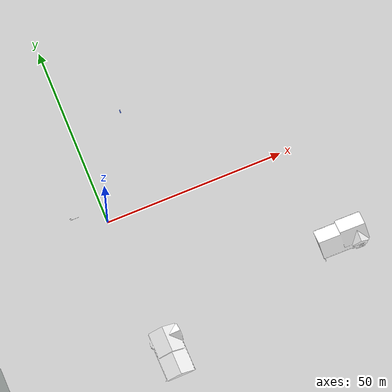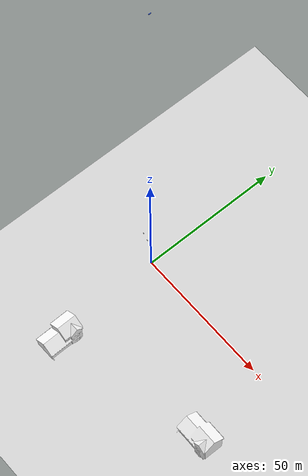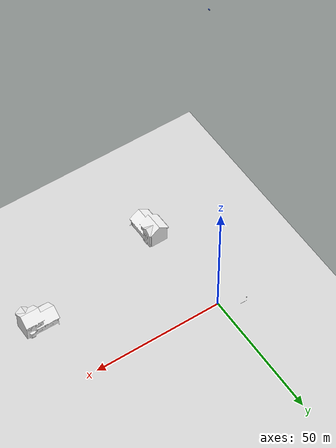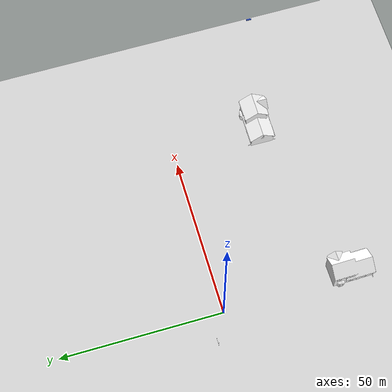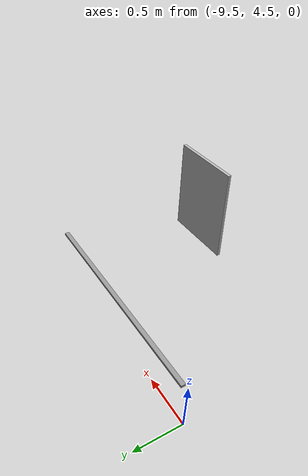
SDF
<sdf version="1.7">
 <world name="default">
  <light name="sun" type="directional">
   <pose>0 0 10 0 -0 0</pose>
   <diffuse>0.8 0.8 0.8 1</diffuse>
   <specular>0.2 0.2 0.2 1</specular>
   <attenuation>
    <range>1000</range>
    <constant>0.9</constant>
    <linear>0.01</linear>
    <quadratic>0.001</quadratic>
   </attenuation>
   <direction>-0.5 0.1 -0.9</direction>
   <spot><inner_angle>0</inner_angle><outer_angle>0</outer_angle><falloff>0</falloff></spot>
  </light>
  <model name="ground_plane">
   <static>1</static>
   <link name="link">
    <collision name="collision">
     <geometry><plane><normal>0 0 1</normal><size>100 100</size></plane></geometry>
     <surface>
      <contact><collide_bitmask>65535</collide_bitmask></contact>
      <friction><ode><mu>100</mu><mu2>50</mu2></ode></friction>
     </surface>
    </collision>
    <visual name="visual">
     <cast_shadows>0</cast_shadows>
     <geometry><plane><normal>0 0 1</normal><size>100 100</size></plane></geometry>
     <material>
      <script><uri>file://media/materials/scripts/gazebo.material</uri><name>Gazebo/Grey</name></script>
     </material>
    </visual>
   </link>
  </model>
  <gravity>0 0 -9.8</gravity>
  <magnetic_field>6e-06 2.3e-05 -4.2e-05</magnetic_field>
  <atmosphere type="adiabatic"/>
  <physics type="ode">
   <max_step_size>0.001</max_step_size>
   <real_time_factor>1</real_time_factor>
   <real_time_update_rate>1000</real_time_update_rate>
  </physics>
  <scene><ambient>0.4 0.4 0.4 1</ambient><background>0.7 0.7 0.7 1</background><shadows>1</shadows></scene>
  <spherical_coordinates>
   <surface_model>EARTH_WGS84</surface_model>
   <latitude_deg>0</latitude_deg>
   <longitude_deg>0</longitude_deg>
   <elevation>0</elevation>
   <heading_deg>0</heading_deg>
  </spherical_coordinates>
  <model name="satellite">
   <link name="link_0">
    <inertial>
     <mass>1</mass>
     <inertia>
      <ixx>0.166667</ixx>
      <ixy>0</ixy>
      <ixz>0</ixz>
      <iyy>0.166667</iyy>
      <iyz>0</iyz>
      <izz>0.166667</izz>
     </inertia>
    </inertial>
    <pose>0 2e-06 4.4e-05 0 -0 0</pose>
    <visual name="visual">
     <geometry><box><size>0.8 0.2 0.2</size></box></geometry>
     <material>
      <lighting>1</lighting>
      <script><uri>file://media/materials/scripts/gazebo.material</uri><name>Gazebo/Blue</name></script>
      <shader type="pixel"><normal_map>__default__</normal_map></shader>
      <ambient>0.3 0.3 0.3 1</ambient>
      <diffuse>0.7 0.7 0.7 1</diffuse>
      <specular>0.01 0.01 0.01 1</specular>
      <emissive>0 0 0 1</emissive>
     </material>
     <cast_shadows>0</cast_shadows>
    </visual>
    <collision name="collision">
     <geometry><box><size>0.8 0.2 0.2</size></box></geometry>
     <surface>
      <friction>
       <ode><mu>1</mu><mu2>1</mu2><fdir1>0 0 0</fdir1><slip1>0</slip1><slip2>0</slip2></ode>
       <torsional>
        <coefficient>1</coefficient>
        <patch_radius>0</patch_radius>
        <surface_radius>0</surface_radius>
        <use_patch_radius>1</use_patch_radius>
        <ode><slip>0</slip></ode>
       </torsional>
      </friction>
      <bounce><restitution_coefficient>0</restitution_coefficient><threshold>1e+06</threshold></bounce>
      <contact>
       <collide_without_contact>0</collide_without_contact>
       <collide_without_contact_bitmask>1</collide_without_contact_bitmask>
       <collide_bitmask>1</collide_bitmask>
       <ode>
        <soft_cfm>0</soft_cfm>
        <soft_erp>0.2</soft_erp>
        <kp>1e+13</kp>
        <kd>1</kd>
        <max_vel>0.01</max_vel>
        <min_depth>0</min_depth>
       </ode>
       <bullet>
        <split_impulse>1</split_impulse>
        <split_impulse_penetration_threshold>-0.01</split_impulse_penetration_threshold>
        <soft_cfm>0</soft_cfm>
        <soft_erp>0.2</soft_erp>
        <kp>1e+13</kp>
        <kd>1</kd>
       </bullet>
      </contact>
     </surface>
    </collision>
    <sensor name="upper_camera" type="camera">
     <pose>0 0 0 0 1.57 0</pose>
     <update_rate>30</update_rate>
     <visualize>1</visualize>
     <camera name="head">
      <horizontal_fov>1.0856</horizontal_fov>
      <image><width>1280</width><height>720</height><format>R8G8B8</format></image>
      <clip><near>0.03</near><far>200</far></clip>
      <noise><type>gaussian</type><mean>0</mean><stddev>0.007</stddev></noise>
     </camera>
     <plugin name="camera_controller" filename="libgazebo_ros_camera.so">
      <alwaysOn>1</alwaysOn>
      <updateRate>0.0</updateRate>
      <cameraName>rrbot/camera1</cameraName>
      <imageTopicName>image_raw</imageTopicName>
      <cameraInfoTopicName>camera_info</cameraInfoTopicName>
      <frameName>camera_link</frameName>
      <hackBaseline>0.07</hackBaseline>
      <distortionK1>0.0</distortionK1>
      <distortionK2>0.0</distortionK2>
      <distortionK3>0.0</distortionK3>
      <distortionT1>0.0</distortionT1>
      <distortionT2>0.0</distortionT2>
     </plugin>
    </sensor>
   </link>
   <static>1</static>
   <pose>4.72727 -3.06392 147.408 0 -0 1.56032</pose>
  </model>
  <model name="House 3">
   <static>1</static>
   <link name="link">
    <collision name="collision">
     <geometry><mesh><uri>model://house_3/meshes/house_3.dae</uri><scale>1.5 1.5 1.5</scale></mesh></geometry>
    </collision>
    <visual name="visual">
     <geometry><mesh><uri>model://house_3/meshes/house_3.dae</uri><scale>1.5 1.5 1.5</scale></mesh></geometry>
     <material>
      <script>
       <uri>model://house_3/materials/scripts</uri>
       <uri>model://house_3/materials/textures</uri>
       <uri>model://house_1/materials/textures</uri>
       <name>House_3/Diffuse</name>
      </script>
      <shader type="normal_map_tangent_space">
       <normal_map>model://house_1/materials/textures/House_1_Normal.png</normal_map>
      </shader>
     </material>
    </visual>
   </link>
   <pose>2.33042 -43.3661 0 0 0 -1.55547</pose>
  </model>
  <model name="House 3_0">
   <static>1</static>
   <link name="link">
    <collision name="collision">
     <geometry><mesh><uri>model://house_3/meshes/house_3.dae</uri><scale>1.5 1.5 1.5</scale></mesh></geometry>
    </collision>
    <visual name="visual">
     <geometry><mesh><uri>model://house_3/meshes/house_3.dae</uri><scale>1.5 1.5 1.5</scale></mesh></geometry>
     <material>
      <script>
       <uri>model://house_3/materials/scripts</uri>
       <uri>model://house_3/materials/textures</uri>
       <uri>model://house_1/materials/textures</uri>
       <name>House_3/Diffuse</name>
      </script>
      <shader type="normal_map_tangent_space">
       <normal_map>model://house_1/materials/textures/House_1_Normal.png</normal_map>
      </shader>
     </material>
    </visual>
   </link>
   <pose>52.7163 -27.6477 0 0 -0 3.13201</pose>
  </model>
  <model name="sign_board_stop">
   <link name="link_0">
    <inertial>
     <mass>1</mass>
     <inertia>
      <ixx>0.166667</ixx>
      <ixy>0</ixy>
      <ixz>0</ixz>
      <iyy>0.166667</iyy>
      <iyz>0</iyz>
      <izz>0.166667</izz>
     </inertia>
    </inertial>
    <pose>-0.022706 -0.007463 0 1.5708 -0.00111 1.56593</pose>
    <visual name="visual">
     <geometry><mesh><uri>model://sign_board_stop/meshes/sign_stand.obj</uri><scale>1 1 1</scale></mesh></geometry>
     <material>
      <lighting>1</lighting>
      <script><uri>file://media/materials/scripts/gazebo.material</uri><name>Gazebo/Grey</name></script>
      <shader type="pixel"/>
      <emissive>0 0 0 1</emissive>
     </material>
    </visual>
    <collision name="collision">
     <geometry><mesh><uri>model://sign_board_stop/meshes/sign_stand.obj</uri><scale>1 1 1</scale></mesh></geometry>
     <surface>
      <friction>
       <ode><mu>1</mu><mu2>1</mu2><fdir1>0 0 0</fdir1><slip1>0</slip1><slip2>0</slip2></ode>
       <torsional>
        <coefficient>1</coefficient>
        <patch_radius>0</patch_radius>
        <surface_radius>0</surface_radius>
        <use_patch_radius>1</use_patch_radius>
        <ode><slip>0</slip></ode>
       </torsional>
      </friction>
      <bounce><restitution_coefficient>0</restitution_coefficient><threshold>1e+06</threshold></bounce>
      <contact>
       <collide_without_contact>0</collide_without_contact>
       <collide_without_contact_bitmask>1</collide_without_contact_bitmask>
       <collide_bitmask>1</collide_bitmask>
       <ode>
        <soft_cfm>0</soft_cfm>
        <soft_erp>0.2</soft_erp>
        <kp>1e+13</kp>
        <kd>1</kd>
        <max_vel>0.01</max_vel>
        <min_depth>0</min_depth>
       </ode>
       <bullet>
        <split_impulse>1</split_impulse>
        <split_impulse_penetration_threshold>-0.01</split_impulse_penetration_threshold>
        <soft_cfm>0</soft_cfm>
        <soft_erp>0.2</soft_erp>
        <kp>1e+13</kp>
        <kd>1</kd>
       </bullet>
      </contact>
     </surface>
    </collision>
   </link>
   <link name="link_1">
    <inertial>
     <mass>1</mass>
     <inertia>
      <ixx>0.166667</ixx>
      <ixy>0</ixy>
      <ixz>0</ixz>
      <iyy>0.166667</iyy>
      <iyz>0</iyz>
      <izz>0.166667</izz>
     </inertia>
    </inertial>
    <pose>0.022706 0.007463 2 -0 1.55484 3.14</pose>
    <visual name="visual">
     <geometry><mesh><uri>model://sign_board_stop/meshes/sign_board.obj</uri><scale>1 1 1</scale></mesh></geometry>
     <material>
      <script>
       <uri>model://sign_board_stop/materials/scripts</uri>
       <uri>model://sign_board_stop/materials/textures</uri>
       <name>sign_board_stop/Diffuse</name>
      </script>
     </material>
    </visual>
    <collision name="collision">
     <geometry><mesh><uri>model://sign_board_stop/meshes/sign_board.obj</uri><scale>1 1 1</scale></mesh></geometry>
     <surface>
      <friction>
       <ode><mu>1</mu><mu2>1</mu2><fdir1>0 0 0</fdir1><slip1>0</slip1><slip2>0</slip2></ode>
       <torsional>
        <coefficient>1</coefficient>
        <patch_radius>0</patch_radius>
        <surface_radius>0</surface_radius>
        <use_patch_radius>1</use_patch_radius>
        <ode><slip>0</slip></ode>
       </torsional>
      </friction>
      <bounce><restitution_coefficient>0</restitution_coefficient><threshold>1e+06</threshold></bounce>
      <contact>
       <collide_without_contact>0</collide_without_contact>
       <collide_without_contact_bitmask>1</collide_without_contact_bitmask>
       <collide_bitmask>1</collide_bitmask>
       <ode>
        <soft_cfm>0</soft_cfm>
        <soft_erp>0.2</soft_erp>
        <kp>1e+13</kp>
        <kd>1</kd>
        <max_vel>0.01</max_vel>
        <min_depth>0</min_depth>
       </ode>
       <bullet>
        <split_impulse>1</split_impulse>
        <split_impulse_penetration_threshold>-0.01</split_impulse_penetration_threshold>
        <soft_cfm>0</soft_cfm>
        <soft_erp>0.2</soft_erp>
        <kp>1e+13</kp>
        <kd>1</kd>
       </bullet>
      </contact>
     </surface>
    </collision>
   </link>
   <joint name="link_0_JOINT_0" type="fixed">
    <parent>link_0</parent>
    <child>link_1</child>
    <physics>
     <ode><limit><cfm>0</cfm><erp>0.2</erp></limit><suspension><cfm>0</cfm><erp>0.2</erp></suspension></ode>
    </physics>
   </joint>
   <static>1</static>
   <pose>-9.17988 4.2985 -0 0 -0 0</pose>
  </model>
 </world>
</sdf>
